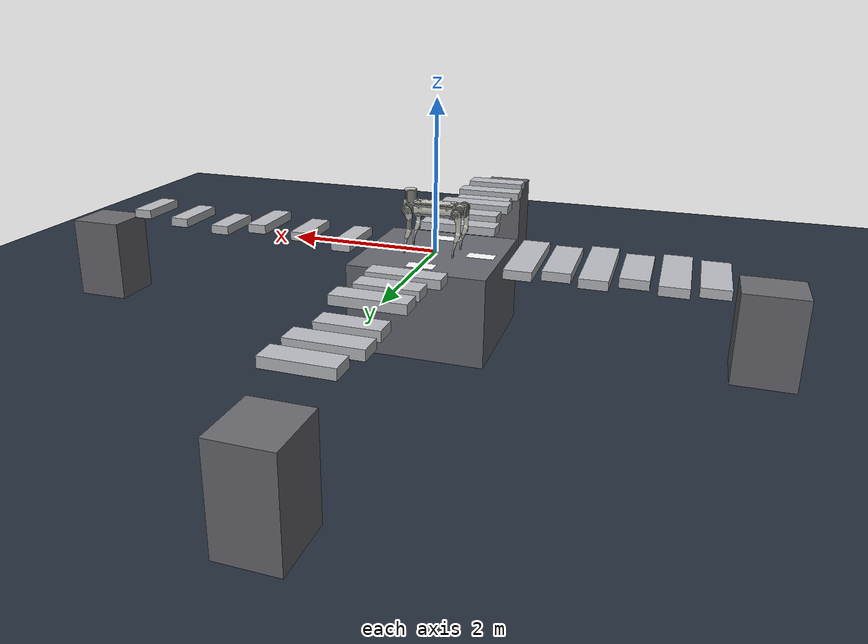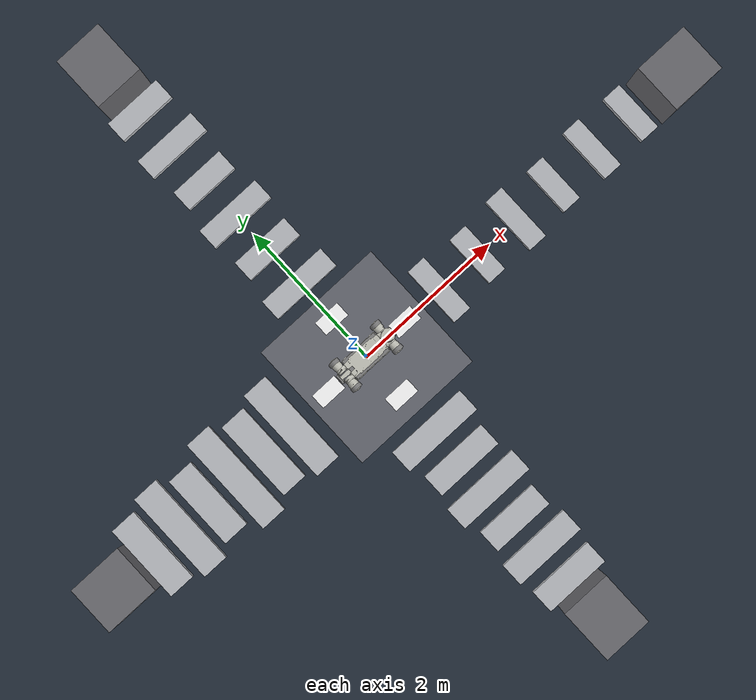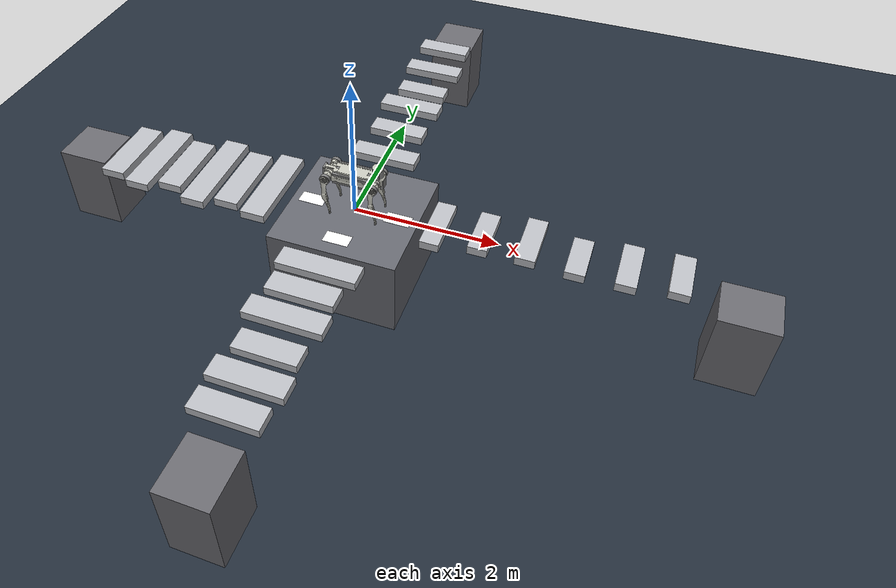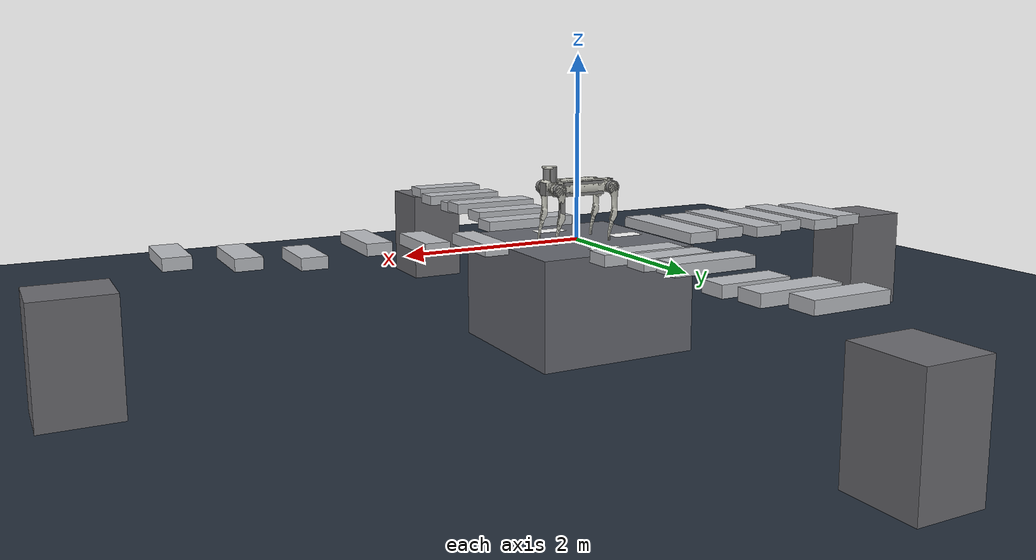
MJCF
<mujoco model="air_beams_cross_1_4_7_10">
  <include file="b2.xml"/>
  <!-- Terrain: Cross Air Beams.
       Difficulty changes beam length, spacing, width, and height, following
       the gym-side air_beams trend. -->
  <statistic center="0 0 0.18" extent="1.0" />
  <visual>
    <headlight diffuse="0.6 0.6 0.6" ambient="0.3 0.3 0.3" specular="0 0 0" />
    <rgba haze="0.15 0.25 0.35 1" />
    <global azimuth="-130" elevation="-20" />
  </visual>
  <asset>
    <texture type="skybox" builtin="gradient" rgb1="0.3 0.5 0.7" rgb2="0 0 0" width="512" height="3072" />
    <texture type="2d" name="groundplane" builtin="checker" mark="edge" rgb1="0.18 0.22 0.28" rgb2="0.10 0.14 0.18" markrgb="0.8 0.8 0.8" width="300" height="300" />
    <material name="groundplane" texture="groundplane" texuniform="true" texrepeat="5 5" reflectance="0.0" />
    <texture name="tex_label_1" type="2d" file="./imgs/label_1.png" />
    <material name="mat_label_1" texture="tex_label_1" specular="0" shininess="0" emission="1" texrepeat="1 1" rgba="1 1 1 1" />
    <texture name="tex_label_7" type="2d" file="./imgs/label_7.png" />
    <material name="mat_label_7" texture="tex_label_7" specular="0" shininess="0" emission="1" texrepeat="1 1" rgba="1 1 1 1" />
    <texture name="tex_label_10" type="2d" file="./imgs/label_10.png" />
    <material name="mat_label_10" texture="tex_label_10" specular="0" shininess="0" emission="1" texrepeat="1 1" rgba="1 1 1 1" />
    <texture name="tex_label_4" type="2d" file="./imgs/label_4.png" />
    <material name="mat_label_4" texture="tex_label_4" specular="0" shininess="0" emission="1" texrepeat="1 1" rgba="1 1 1 1" />
  </asset>
  <worldbody>
    <light pos="0 0 1.5" dir="0 0 -1" directional="true" />

    <geom name="pit_floor" pos="0 0 -1.25" size="20 20 0.10" type="box" material="groundplane" />
    <geom name="hub" pos="0 0 -0.60" type="box" size="0.90 0.90 0.60" rgba="0.40 0.41 0.44 1" />

    <!-- neg_x direction, level 1, difficulty=0.1, air_beams -->
    <geom name="neg_x_beam_1" pos="-1.225 0 0.02" type="box" size="0.175 0.65 0.06" rgba="0.73 0.74 0.76 1" />
    <geom name="neg_x_beam_2" pos="-1.675 0 0.02" type="box" size="0.175 0.55 0.06" rgba="0.73 0.74 0.76 1" />
    <geom name="neg_x_beam_3" pos="-2.125 0 0.02" type="box" size="0.175 0.675 0.06" rgba="0.73 0.74 0.76 1" />
    <geom name="neg_x_beam_4" pos="-2.575 0 0.02" type="box" size="0.175 0.5 0.06" rgba="0.73 0.74 0.76 1" />
    <geom name="neg_x_beam_5" pos="-3.025 0 0.02" type="box" size="0.175 0.625 0.06" rgba="0.73 0.74 0.76 1" />
    <geom name="neg_x_beam_6" pos="-3.475 0 0.02" type="box" size="0.175 0.525 0.06" rgba="0.73 0.74 0.76 1" />
    <geom name="neg_x_landing" pos="-4.125 0 -0.6" type="box" size="0.375 0.34 0.6" rgba="0.42 0.42 0.44 1" />
    <geom name="neg_x_label" pos="-0.62 0 0.002" type="box" size="0.18 0.10 0.0001" contype="0" conaffinity="0" group="1" material="mat_label_1" rgba="1 1 1 1" />

    <!-- pos_y direction, level 7, difficulty=0.7, air_beams -->
    <geom name="pos_y_beam_1" pos="0 1.19 0.04" type="box" size="0.475 0.14 0.06" rgba="0.73 0.74 0.76 1" />
    <geom name="pos_y_beam_2" pos="0 1.75 0.09" type="box" size="0.4 0.14 0.06" rgba="0.73 0.74 0.76 1" />
    <geom name="pos_y_beam_3" pos="0 2.31 0.15" type="box" size="0.45 0.14 0.06" rgba="0.73 0.74 0.76 1" />
    <geom name="pos_y_beam_4" pos="0 2.87 0.07" type="box" size="0.37 0.14 0.06" rgba="0.73 0.74 0.76 1" />
    <geom name="pos_y_beam_5" pos="0 3.43 0.12" type="box" size="0.43 0.14 0.06" rgba="0.73 0.74 0.76 1" />
    <geom name="pos_y_beam_6" pos="0 3.99 0.18" type="box" size="0.39 0.14 0.06" rgba="0.73 0.74 0.76 1" />
    <geom name="pos_y_landing" pos="0 4.785 -0.6" type="box" size="0.34 0.375 0.6" rgba="0.42 0.42 0.44 1" />
    <geom name="pos_y_label" pos="0 0.62 0.002" type="box" size="0.10 0.18 0.0001" quat="0.7071067811865476 0 0 0.7071067811865475" contype="0" conaffinity="0" group="1" material="mat_label_7" rgba="1 1 1 1" />

    <!-- pos_x direction, level 10, difficulty=0.9, air_beams -->
    <geom name="pos_x_beam_1" pos="1.18 0 0.06" type="box" size="0.13 0.41 0.06" rgba="0.73 0.74 0.76 1" />
    <geom name="pos_x_beam_2" pos="1.8 0 0.12" type="box" size="0.13 0.35 0.06" rgba="0.73 0.74 0.76 1" />
    <geom name="pos_x_beam_3" pos="2.42 0 0.18" type="box" size="0.13 0.39 0.06" rgba="0.73 0.74 0.76 1" />
    <geom name="pos_x_beam_4" pos="3.04 0 0.09" type="box" size="0.13 0.33 0.06" rgba="0.73 0.74 0.76 1" />
    <geom name="pos_x_beam_5" pos="3.66 0 0.15" type="box" size="0.13 0.37 0.06" rgba="0.73 0.74 0.76 1" />
    <geom name="pos_x_beam_6" pos="4.28 0 0.21" type="box" size="0.13 0.34 0.06" rgba="0.73 0.74 0.76 1" />
    <geom name="pos_x_landing" pos="5.145 0 -0.6" type="box" size="0.375 0.34 0.6" rgba="0.42 0.42 0.44 1" />
    <geom name="pos_x_label" pos="0.62 0 0.002" type="box" size="0.18 0.10 0.0001" contype="0" conaffinity="0" group="1" material="mat_label_10" rgba="1 1 1 1" />

    <!-- neg_y direction, level 4, difficulty=0.4, air_beams -->
    <geom name="neg_y_beam_1" pos="0 -1.205 0.02" type="box" size="0.55 0.155 0.06" rgba="0.73 0.74 0.76 1" />
    <geom name="neg_y_beam_2" pos="0 -1.675 0.06" type="box" size="0.46 0.155 0.06" rgba="0.73 0.74 0.76 1" />
    <geom name="neg_y_beam_3" pos="0 -2.145 0.1" type="box" size="0.525 0.155 0.06" rgba="0.73 0.74 0.76 1" />
    <geom name="neg_y_beam_4" pos="0 -2.615 0.04" type="box" size="0.42 0.155 0.06" rgba="0.73 0.74 0.76 1" />
    <geom name="neg_y_beam_5" pos="0 -3.085 0.08" type="box" size="0.49 0.155 0.06" rgba="0.73 0.74 0.76 1" />
    <geom name="neg_y_beam_6" pos="0 -3.555 0.12" type="box" size="0.44 0.155 0.06" rgba="0.73 0.74 0.76 1" />
    <geom name="neg_y_landing" pos="0 -4.245 -0.6" type="box" size="0.34 0.375 0.6" rgba="0.42 0.42 0.44 1" />
    <geom name="neg_y_label" pos="0 -0.62 0.002" type="box" size="0.10 0.18 0.0001" quat="0.7071067811865476 0 0 -0.7071067811865475" contype="0" conaffinity="0" group="1" material="mat_label_4" rgba="1 1 1 1" />
  </worldbody>
  <keyframe>
    <key name="b2_start" qpos="0 0 0.64 1 0 0 0 0.1 0.8 -1.5 -0.1 0.8 -1.5 0.1 1.0 -1.5 -0.1 1.0 -1.5"/>
  </keyframe>
</mujoco>

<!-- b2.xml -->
<mujoco model="b2_description">
  <compiler angle="radian" meshdir="assets" />
  <statistic meansize="0.25" extent="2.0" center="0 0 -0.35" />
  <default>
    <joint damping="0.02" armature="0.02" frictionloss="0.05" />
    <geom condim="3" friction="0.9 0.02 0.01" />
    <default class="visual">
      <geom type="mesh" contype="0" conaffinity="0" group="2" />
    </default>
  </default>
  <asset>
    <material name="b2_body" rgba="0.78 0.78 0.74 1" />
    <material name="black" rgba="0.06 0.06 0.06 1" />
    <mesh name="FL_calf_mesh" file="FL_calf.obj" />
    <mesh name="FL_hip_mesh" file="FL_hip.obj" />
    <mesh name="FL_thigh_mesh" file="FL_thigh.obj" />
    <mesh name="FR_calf_mesh" file="FR_calf.obj" />
    <mesh name="FR_hip_mesh" file="FR_hip.obj" />
    <mesh name="FR_thigh_mesh" file="FR_thigh.obj" />
    <mesh name="RL_calf_mesh" file="RL_calf.obj" />
    <mesh name="RL_hip_mesh" file="RL_hip.obj" />
    <mesh name="RL_thigh_mesh" file="RL_thigh.obj" />
    <mesh name="RR_calf_mesh" file="RR_calf.obj" />
    <mesh name="RR_hip_mesh" file="RR_hip.obj" />
    <mesh name="RR_thigh_mesh" file="RR_thigh.obj" />
    <mesh name="base_link_mesh" file="base_link.obj" />
  </asset>
  <worldbody>
    <body name="base" pos="0 0 0.58">
      <inertial pos="0.000458 0.005261 0.000665" mass="35.86" fullinertia="0.27466 1.0618 1.1825 -0.000622 0.00315 -0.00139" />
      <freejoint name="root" />
      <geom name="base_visual_0" mesh="base_link_mesh" material="b2_body" class="visual" />
      <geom name="base_collision_0" type="box" size="0.25 0.14 0.075" />
      <body pos="0.34218 0 0.17851" name="lidar_link">
        <geom pos="0 0 -0.02" name="lidar_link_collision_0" type="cylinder" size="0.076 0.08" />
      </body>
      <body pos="0.41251 0.024997 0.04765" quat="0.27059575 -0.65328103 0.65328343 -0.27059675" name="f_dc_link" />
      <body pos="-0.4081 -0.025 0.024861" quat="0.27075907 -0.65321336 -0.65321576 0.27076006" name="r_dc_link" />
      <body pos="0 -0.02341 0.04927" name="imu_link" />
      <body name="head_Link">
        <inertial pos="0.33989 -0.000168 0.12029" mass="3.6885" fullinertia="0.026455 0.029221 0.010918 3.15e-05 0.00166 -3.27e-05" />
        <geom pos="0.41 0 0.005" name="head_Link_collision_0" type="box" size="0.02 0.06 0.07" />
      </body>
      <body name="tail_link">
        <inertial pos="-0.37448 0.000488 0.006495" mass="0.795" fullinertia="0.0028118 0.0047506 0.0029154 1.95e-05 -7.87e-06 -1.57e-05" />
        <geom pos="-0.405 0 0.005" name="tail_link_collision_0" type="box" size="0.0125 0.06 0.07" />
      </body>
      <body pos="0.3285 0.072 0" name="FL_hip">
        <inertial pos="-0.003841 -0.009068 0" mass="2.673" fullinertia="0.0033188 0.0048743 0.0037087 7.16e-05 -3.77e-07 4e-09" />
        <joint name="FL_hip_joint" axis="1 0 0" range="-0.87 0.87" actuatorfrcrange="-200 200" />
        <geom name="FL_hip_visual_0" mesh="FL_hip_mesh" material="b2_body" class="visual" />
        <geom pos="0 0.12 0" quat="0.70710678 0.70710678 0 0" name="FL_hip_collision_0" type="cylinder" size="0.07 0.025" />
        <body pos="0 0.11973 0" name="FL_thigh">
          <inertial pos="-0.006279 -0.032049 -0.057835" mass="4.536" fullinertia="0.062299 0.061399 0.0081997 0.00087781 -0.0036475 0.0083537" />
          <joint name="FL_thigh_joint" axis="0 1 0" range="-0.94 4.69" actuatorfrcrange="-200 200" />
          <geom name="FL_thigh_visual_0" mesh="FL_thigh_mesh" material="b2_body" class="visual" />
          <geom pos="-0.025 0 -0.16" quat="0.70738827 0 0.70682518 0" name="FL_thigh_collision_0" type="box" size="0.16 0.02225 0.027" />
          <body pos="0 -8.6984e-05 -0.35" name="FL_calf">
            <inertial pos="0.012422 0 -0.12499" mass="0.404" fullinertia="0.01143 0.011534 0.000331 0 0.000643 0" />
            <joint name="FL_calf_joint" axis="0 1 0" range="-2.82 -0.43" actuatorfrcrange="-320 320" />
            <geom name="FL_calf_visual_0" mesh="FL_calf_mesh" material="b2_body" class="visual" />
            <geom pos="-0.002 0 -0.03" quat="0.82533561 0 0.56464247 0" name="FL_calf_collision_0" type="box" size="0.05 0.01225 0.009" />
            <geom pos="0.022 0 -0.1" quat="0.78070695 0 0.62489732 0" name="FL_calf_collision_1" type="box" size="0.05 0.01225 0.009" />
            <geom pos="0.036 0 -0.225" quat="0.72138236 0 0.692537 0" name="FL_calf_collision_2" type="box" size="0.075 0.01225 0.0075" />
            <geom pos="0.023 0 -0.31" quat="0.54030231 0 0.84147098 0" name="FL_calf_collision_3" type="box" size="0.025 0.014 0.0175" />
            <body pos="0 0 -0.35" name="FL_foot">
              <inertial pos="-0.006511 0 -0.010144" mass="0.126" fullinertia="3.8e-05 4.1e-05 4.2e-05 0 1.1e-05 0" />
              <geom quat="0.70738827 0.70682518 0 0" name="FL_foot_collision_0" type="sphere" size="0.032" />
            </body>
          </body>
          <body pos="0 -0.05788 0" name="FL_calf_rotor">
            <inertial pos="0 0 0" mass="0.2734" fullinertia="0.000144463 0.000144463 0.000263053 0 0 0" />
            <geom quat="0.70710678 0.70710678 0 0" name="FL_calf_rotor_collision_0" type="cylinder" size="0.05 0.01" />
          </body>
        </body>
        <body pos="0 -0.00798 0" name="FL_thigh_rotor">
          <inertial pos="0 0 0" mass="0.2734" fullinertia="0.000144463 0.000144463 0.000263053 0 0 0" />
          <geom quat="0.70710678 0.70710678 0 0" name="FL_thigh_rotor_collision_0" type="cylinder" size="0.05 0.01" />
        </body>
      </body>
      <body pos="0.20205 0.072 0" name="FL_hip_rotor">
        <inertial pos="0 0 0" mass="0.2734" fullinertia="0.000144463 0.000144463 0.000263053 0 0 0" />
        <geom quat="0.70710678 0 0.70710678 0" name="FL_hip_rotor_collision_0" type="cylinder" size="0.05 0.01" />
      </body>
      <body pos="0.3285 -0.072 0" name="FR_hip">
        <inertial pos="-0.009305 0.010228 0.000264" mass="2.673" fullinertia="0.0026431 0.0046728 0.0034208 -0.00019234 -6.76e-06 7.16e-06" />
        <joint name="FR_hip_joint" axis="1 0 0" range="-0.87 0.87" actuatorfrcrange="-200 200" />
        <geom name="FR_hip_visual_0" mesh="FR_hip_mesh" material="b2_body" class="visual" />
        <geom pos="0 -0.12 0" quat="0.70710678 0.70710678 0 0" name="FR_hip_collision_0" type="cylinder" size="0.07 0.025" />
        <body pos="0 -0.11973 0" name="FR_thigh">
          <inertial pos="-0.006279 0.032049 -0.057835" mass="4.536" fullinertia="0.06229908 0.06139927 0.008199745 -0.000877808 -0.003647464 -0.008353671" />
          <joint name="FR_thigh_joint" axis="0 1 0" range="-0.94 4.69" actuatorfrcrange="-200 200" />
          <geom name="FR_thigh_visual_0" mesh="FR_thigh_mesh" material="b2_body" class="visual" />
          <geom pos="-0.03 0 -0.2" quat="0.70738827 0 0.70682518 0" name="FR_thigh_collision_0" type="box" size="0.125 0.014 0.02" />
          <body pos="0 8.6986e-05 -0.35" name="FR_calf">
            <inertial pos="0.012422 0 -0.12499" mass="0.404" fullinertia="0.01143 0.011534 0.000331 0 0.000643 0" />
            <joint name="FR_calf_joint" axis="0 1 0" range="-2.82 -0.43" actuatorfrcrange="-320 320" />
            <geom name="FR_calf_visual_0" mesh="FR_calf_mesh" material="b2_body" class="visual" />
            <geom pos="-0.002 0 -0.03" quat="0.82533561 0 0.56464247 0" name="FR_calf_collision_0" type="box" size="0.05 0.01225 0.009" />
            <geom pos="0.022 0 -0.1" quat="0.78070695 0 0.62489732 0" name="FR_calf_collision_1" type="box" size="0.05 0.01225 0.009" />
            <geom pos="0.036 0 -0.225" quat="0.72138236 0 0.692537 0" name="FR_calf_collision_2" type="box" size="0.075 0.01225 0.0075" />
            <geom pos="0.023 0 -0.31" quat="0.54030231 0 0.84147098 0" name="FR_calf_collision_3" type="box" size="0.025 0.014 0.0175" />
            <body pos="0 0 -0.35" name="FR_foot">
              <inertial pos="-0.006511 0 -0.010144" mass="0.126" fullinertia="3.8e-05 4.1e-05 4.2e-05 0 1.1e-05 0" />
              <geom quat="0.70738827 0.70682518 0 0" name="FR_foot_collision_0" type="sphere" size="0.032" />
            </body>
          </body>
          <body pos="0 0.05788 0" name="FR_calf_rotor">
            <inertial pos="0 0 0" mass="0.2734" fullinertia="0.000144463 0.000144463 0.000263053 0 0 0" />
            <geom quat="0.70710678 0.70710678 0 0" name="FR_calf_rotor_collision_0" type="cylinder" size="0.05 0.01" />
          </body>
        </body>
        <body pos="0 0.00798 0" name="FR_thigh_rotor">
          <inertial pos="0 0 0" mass="0.2734" fullinertia="0.000144463 0.000144463 0.000263053 0 0 0" />
          <geom quat="0.70710678 0.70710678 0 0" name="FR_thigh_rotor_collision_0" type="cylinder" size="0.05 0.01" />
        </body>
      </body>
      <body pos="0.20205 -0.072 0" name="FR_hip_rotor">
        <inertial pos="0 0 0" mass="0.2734" fullinertia="0.000144463 0.000144463 0.000263053 0 0 0" />
        <geom quat="0.70710678 0 0.70710678 0" name="FR_hip_rotor_collision_0" type="cylinder" size="0.05 0.01" />
      </body>
      <body pos="-0.3285 0.072 0" name="RL_hip">
        <inertial pos="0.009305 -0.010228 0.000264" mass="2.673" fullinertia="0.0026431 0.0046728 0.0034208 -0.00019234 6.76e-06 -7.16e-06" />
        <joint name="RL_hip_joint" axis="1 0 0" range="-0.87 0.87" actuatorfrcrange="-200 200" />
        <geom name="RL_hip_visual_0" mesh="RL_hip_mesh" material="b2_body" class="visual" />
        <geom pos="0 0.12 0" quat="0.70710678 0.70710678 0 0" name="RL_hip_collision_0" type="cylinder" size="0.07 0.025" />
        <body pos="0 0.11973 0" name="RL_thigh">
          <inertial pos="-0.006279 -0.032049 -0.057835" mass="4.536" fullinertia="0.06229908 0.06139927 0.008199745 0.000877808 -0.003647464 0.008353671" />
          <joint name="RL_thigh_joint" axis="0 1 0" range="-0.94 4.69" actuatorfrcrange="-200 200" />
          <geom name="RL_thigh_visual_0" mesh="RL_thigh_mesh" material="b2_body" class="visual" />
          <geom pos="-0.03 0 -0.2" quat="0.70738827 0 0.70682518 0" name="RL_thigh_collision_0" type="box" size="0.125 0.014 0.02" />
          <body pos="0 -8.6984e-05 -0.35" name="RL_calf">
            <inertial pos="0.012422 0 -0.12499" mass="0.404" fullinertia="0.01143 0.011534 0.000331 0 0.000643 0" />
            <joint name="RL_calf_joint" axis="0 1 0" range="-2.82 -0.43" actuatorfrcrange="-320 320" />
            <geom name="RL_calf_visual_0" mesh="RL_calf_mesh" material="b2_body" class="visual" />
            <geom pos="-0.002 0 -0.03" quat="0.82533561 0 0.56464247 0" name="RL_calf_collision_0" type="box" size="0.05 0.01225 0.009" />
            <geom pos="0.022 0 -0.1" quat="0.78070695 0 0.62489732 0" name="RL_calf_collision_1" type="box" size="0.05 0.01225 0.009" />
            <geom pos="0.036 0 -0.225" quat="0.72138236 0 0.692537 0" name="RL_calf_collision_2" type="box" size="0.075 0.01225 0.0075" />
            <geom pos="0.023 0 -0.31" quat="0.54030231 0 0.84147098 0" name="RL_calf_collision_3" type="box" size="0.025 0.014 0.0175" />
            <body pos="0 0 -0.35" name="RL_foot">
              <inertial pos="-0.006511 0 -0.010144" mass="0.126" fullinertia="3.8e-05 4.1e-05 4.2e-05 0 1.1e-05 0" />
              <geom quat="0.70738827 0.70682518 0 0" name="RL_foot_collision_0" type="sphere" size="0.032" />
            </body>
          </body>
          <body pos="0 -0.05788 0" name="RL_calf_rotor">
            <inertial pos="0 0 0" mass="0.2734" fullinertia="0.000144463 0.000144463 0.000263053 0 0 0" />
            <geom quat="0.70710678 0.70710678 0 0" name="RL_calf_rotor_collision_0" type="cylinder" size="0.05 0.01" />
          </body>
        </body>
        <body pos="0 -0.00798 0" name="RL_thigh_rotor">
          <inertial pos="0 0 0" mass="0.2734" fullinertia="0.000144463 0.000144463 0.000263053 0 0 0" />
          <geom quat="0.70710678 0.70710678 0 0" name="RL_thigh_rotor_collision_0" type="cylinder" size="0.05 0.01" />
        </body>
      </body>
      <body pos="-0.20205 0.072 0" name="RL_hip_rotor">
        <inertial pos="0 0 0" mass="0.2734" fullinertia="0.000144463 0.000144463 0.000263053 0 0 0" />
        <geom quat="0.70710678 0 0.70710678 0" name="RL_hip_rotor_collision_0" type="cylinder" size="0.05 0.01" />
      </body>
      <body pos="-0.3285 -0.072 0" name="RR_hip">
        <inertial pos="0.003841 0.009068 0" mass="2.673" fullinertia="0.0033188 0.0048743 0.0037087 7.16e-05 3.77e-07 -4e-09" />
        <joint name="RR_hip_joint" axis="1 0 0" range="-0.87 0.87" actuatorfrcrange="-200 200" />
        <geom name="RR_hip_visual_0" mesh="RR_hip_mesh" material="b2_body" class="visual" />
        <geom pos="0 -0.12 0" quat="0.70710678 0.70710678 0 0" name="RR_hip_collision_0" type="cylinder" size="0.07 0.025" />
        <body pos="0 -0.11973 0" name="RR_thigh">
          <inertial pos="-0.006279 0.032049 -0.057835" mass="4.536" fullinertia="0.062299 0.061399 0.0081997 -0.00087781 -0.0036475 -0.0083537" />
          <joint name="RR_thigh_joint" axis="0 1 0" range="-0.94 4.69" actuatorfrcrange="-200 200" />
          <geom name="RR_thigh_visual_0" mesh="RR_thigh_mesh" material="b2_body" class="visual" />
          <geom pos="-0.03 0 -0.2" quat="0.70738827 0 0.70682518 0" name="RR_thigh_collision_0" type="box" size="0.125 0.014 0.02" />
          <body pos="0 8.6986e-05 -0.35" name="RR_calf">
            <inertial pos="0.012422 0 -0.12499" mass="0.404" fullinertia="0.01143 0.011534 0.000331 0 0.000643 0" />
            <joint name="RR_calf_joint" axis="0 1 0" range="-2.82 -0.43" actuatorfrcrange="-320 320" />
            <geom name="RR_calf_visual_0" mesh="RR_calf_mesh" material="b2_body" class="visual" />
            <geom pos="-0.002 0 -0.03" quat="0.82533561 0 0.56464247 0" name="RR_calf_collision_0" type="box" size="0.05 0.01225 0.009" />
            <geom pos="0.022 0 -0.1" quat="0.78070695 0 0.62489732 0" name="RR_calf_collision_1" type="box" size="0.05 0.01225 0.009" />
            <geom pos="0.036 0 -0.225" quat="0.72138236 0 0.692537 0" name="RR_calf_collision_2" type="box" size="0.075 0.01225 0.0075" />
            <geom pos="0.023 0 -0.31" quat="0.54030231 0 0.84147098 0" name="RR_calf_collision_3" type="box" size="0.025 0.014 0.0175" />
            <body pos="0 -8.6984e-05 -0.35" name="RR_foot">
              <inertial pos="-0.006511 0 -0.010144" mass="0.126" fullinertia="3.8e-05 4.1e-05 4.2e-05 0 1.1e-05 0" />
              <geom quat="0.70738827 0.70682518 0 0" name="RR_foot_collision_0" type="sphere" size="0.032" />
            </body>
          </body>
          <body pos="0 0.05788 0" name="RR_calf_rotor">
            <inertial pos="0 0 0" mass="0.2734" fullinertia="0.000144463 0.000144463 0.000263053 0 0 0" />
            <geom quat="0.70710678 0.70710678 0 0" name="RR_calf_rotor_collision_0" type="cylinder" size="0.05 0.01" />
          </body>
        </body>
        <body pos="0 0.00798 0" name="RR_thigh_rotor">
          <inertial pos="0 0 0" mass="0.2734" fullinertia="0.000144463 0.000144463 0.000263053 0 0 0" />
          <geom quat="0.70710678 0.70710678 0 0" name="RR_thigh_rotor_collision_0" type="cylinder" size="0.05 0.01" />
        </body>
      </body>
      <body pos="-0.20205 -0.072 0" name="RR_hip_rotor">
        <inertial pos="0 0 0" mass="0.2734" fullinertia="0.000144463 0.000144463 0.000263053 0 0 0" />
        <geom quat="0.70710678 0 0.70710678 0" name="RR_hip_rotor_collision_0" type="cylinder" size="0.05 0.01" />
      </body>
      <body pos="0.39079 0 -0.013433" quat="0.49999816 -0.5 0.50000184 -0.5" name="f_oc_link" />
      <body pos="-0.38451 0 -0.023249" quat="0.49999816 -0.5 -0.50000184 0.5" name="r_oc_link" />
    </body>
  </worldbody>
  <contact>
    <!-- Training disables robot self-collisions; keep same-leg internal contacts from locking the leg. -->
    <exclude body1="base" body2="FL_hip_rotor" />
    <exclude body1="FL_hip" body2="FL_hip_rotor" />
    <exclude body1="FL_hip" body2="FL_thigh" />
    <exclude body1="FL_hip" body2="FL_thigh_rotor" />
    <exclude body1="FL_thigh" body2="FL_thigh_rotor" />
    <exclude body1="FL_thigh" body2="FL_calf" />
    <exclude body1="FL_thigh" body2="FL_calf_rotor" />
    <exclude body1="FL_calf" body2="FL_calf_rotor" />
    <exclude body1="FL_calf" body2="FL_foot" />
    <exclude body1="base" body2="FR_hip_rotor" />
    <exclude body1="FR_hip" body2="FR_hip_rotor" />
    <exclude body1="FR_hip" body2="FR_thigh" />
    <exclude body1="FR_hip" body2="FR_thigh_rotor" />
    <exclude body1="FR_thigh" body2="FR_thigh_rotor" />
    <exclude body1="FR_thigh" body2="FR_calf" />
    <exclude body1="FR_thigh" body2="FR_calf_rotor" />
    <exclude body1="FR_calf" body2="FR_calf_rotor" />
    <exclude body1="FR_calf" body2="FR_foot" />
    <exclude body1="base" body2="RL_hip_rotor" />
    <exclude body1="RL_hip" body2="RL_hip_rotor" />
    <exclude body1="RL_hip" body2="RL_thigh" />
    <exclude body1="RL_hip" body2="RL_thigh_rotor" />
    <exclude body1="RL_thigh" body2="RL_thigh_rotor" />
    <exclude body1="RL_thigh" body2="RL_calf" />
    <exclude body1="RL_thigh" body2="RL_calf_rotor" />
    <exclude body1="RL_calf" body2="RL_calf_rotor" />
    <exclude body1="RL_calf" body2="RL_foot" />
    <exclude body1="base" body2="RR_hip_rotor" />
    <exclude body1="RR_hip" body2="RR_hip_rotor" />
    <exclude body1="RR_hip" body2="RR_thigh" />
    <exclude body1="RR_hip" body2="RR_thigh_rotor" />
    <exclude body1="RR_thigh" body2="RR_thigh_rotor" />
    <exclude body1="RR_thigh" body2="RR_calf" />
    <exclude body1="RR_calf" body2="RR_calf_rotor" />
    <exclude body1="RR_thigh" body2="RR_calf_rotor" />
    <exclude body1="RR_calf" body2="RR_foot" />
  </contact>
  <actuator>
    <motor name="FL_hip" joint="FL_hip_joint" ctrllimited="true" ctrlrange="-200 200" />
    <motor name="FL_thigh" joint="FL_thigh_joint" ctrllimited="true" ctrlrange="-200 200" />
    <motor name="FL_calf" joint="FL_calf_joint" ctrllimited="true" ctrlrange="-320 320" />
    <motor name="FR_hip" joint="FR_hip_joint" ctrllimited="true" ctrlrange="-200 200" />
    <motor name="FR_thigh" joint="FR_thigh_joint" ctrllimited="true" ctrlrange="-200 200" />
    <motor name="FR_calf" joint="FR_calf_joint" ctrllimited="true" ctrlrange="-320 320" />
    <motor name="RL_hip" joint="RL_hip_joint" ctrllimited="true" ctrlrange="-200 200" />
    <motor name="RL_thigh" joint="RL_thigh_joint" ctrllimited="true" ctrlrange="-200 200" />
    <motor name="RL_calf" joint="RL_calf_joint" ctrllimited="true" ctrlrange="-320 320" />
    <motor name="RR_hip" joint="RR_hip_joint" ctrllimited="true" ctrlrange="-200 200" />
    <motor name="RR_thigh" joint="RR_thigh_joint" ctrllimited="true" ctrlrange="-200 200" />
    <motor name="RR_calf" joint="RR_calf_joint" ctrllimited="true" ctrlrange="-320 320" />
  </actuator>
</mujoco>
